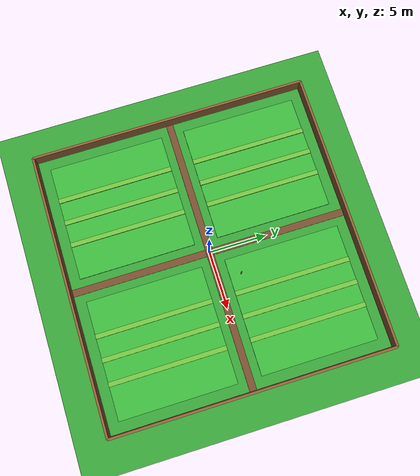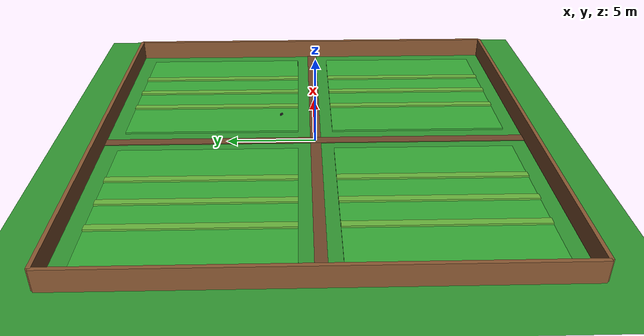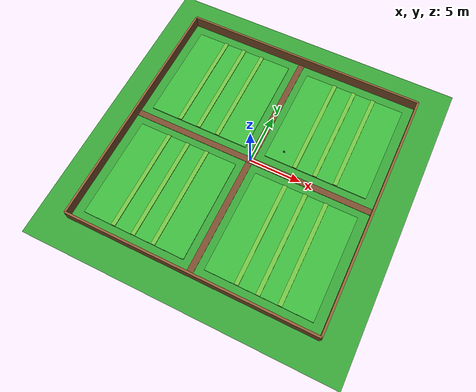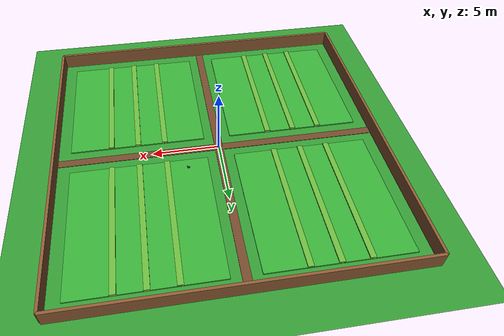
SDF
<?xml version="1.0"?>
<sdf version="1.7">
  <world name="bird_deterrent_field">
    <!-- Basic simulation settings for a stable outdoor field. -->
    <physics type="ode">
      <max_step_size>0.001</max_step_size>
      <real_time_factor>1.0</real_time_factor>
      <real_time_update_rate>1000.0</real_time_update_rate>
    </physics>

    <gravity>0 0 -9.81</gravity>

    <!-- Sunlight for the scene. -->
    <include>
      <uri>model://sun</uri>
    </include>

    <!-- Ground plane with a light green field appearance. -->
    <model name="field_ground">
      <static>true</static>
      <link name="ground_link">
        <pose>0 0 0 0 0 0</pose>
        <collision name="ground_collision">
          <geometry>
            <plane>
              <normal>0 0 1</normal>
              <size>60 60</size>
            </plane>
          </geometry>
        </collision>

        <visual name="ground_visual">
          <geometry>
            <plane>
              <normal>0 0 1</normal>
              <size>60 60</size>
            </plane>
          </geometry>
          <material>
            <ambient>0.15 0.45 0.15 1.0</ambient>
            <diffuse>0.20 0.60 0.20 1.0</diffuse>
            <specular>0.05 0.05 0.05 1.0</specular>
          </material>
        </visual>
      </link>
    </model>

    <!-- Four crop quadrants separated by a central dirt path cross. -->
    <model name="crop_quadrant_nw">
      <static>true</static>
      <link name="link">
        <pose>-6.0 6.0 0.05 0 0 0</pose>
        <collision name="collision">
          <geometry>
            <box>
              <size>10.0 10.0 0.10</size>
            </box>
          </geometry>
        </collision>
        <visual name="visual">
          <geometry>
            <box>
              <size>10.0 10.0 0.10</size>
            </box>
          </geometry>
          <material>
            <ambient>0.16 0.50 0.16 1.0</ambient>
            <diffuse>0.22 0.68 0.22 1.0</diffuse>
          </material>
        </visual>
      </link>
    </model>

    <model name="crop_rows_nw">
      <static>true</static>
      <link name="link">
        <pose>-6.0 6.0 0.10 0 0 0</pose>
        <visual name="row_1">
          <pose>-2.0 0 0 0 0 0</pose>
          <geometry><box><size>0.40 10.0 0.20</size></box></geometry>
          <material><ambient>0.32 0.58 0.18 1.0</ambient><diffuse>0.42 0.72 0.24 1.0</diffuse></material>
        </visual>
        <visual name="row_2">
          <pose>0.0 0 0 0 0 0</pose>
          <geometry><box><size>0.40 10.0 0.20</size></box></geometry>
          <material><ambient>0.32 0.58 0.18 1.0</ambient><diffuse>0.42 0.72 0.24 1.0</diffuse></material>
        </visual>
        <visual name="row_3">
          <pose>2.0 0 0 0 0 0</pose>
          <geometry><box><size>0.40 10.0 0.20</size></box></geometry>
          <material><ambient>0.32 0.58 0.18 1.0</ambient><diffuse>0.42 0.72 0.24 1.0</diffuse></material>
        </visual>
      </link>
    </model>

    <model name="crop_quadrant_ne">
      <static>true</static>
      <link name="link">
        <pose>6.0 6.0 0.05 0 0 0</pose>
        <collision name="collision">
          <geometry><box><size>10.0 10.0 0.10</size></box></geometry>
        </collision>
        <visual name="visual">
          <geometry><box><size>10.0 10.0 0.10</size></box></geometry>
          <material><ambient>0.16 0.50 0.16 1.0</ambient><diffuse>0.22 0.68 0.22 1.0</diffuse></material>
        </visual>
      </link>
    </model>

    <model name="crop_rows_ne">
      <static>true</static>
      <link name="link">
        <pose>6.0 6.0 0.10 0 0 0</pose>
        <visual name="row_1">
          <pose>-2.0 0 0 0 0 0</pose>
          <geometry><box><size>0.40 10.0 0.20</size></box></geometry>
          <material><ambient>0.32 0.58 0.18 1.0</ambient><diffuse>0.42 0.72 0.24 1.0</diffuse></material>
        </visual>
        <visual name="row_2">
          <pose>0.0 0 0 0 0 0</pose>
          <geometry><box><size>0.40 10.0 0.20</size></box></geometry>
          <material><ambient>0.32 0.58 0.18 1.0</ambient><diffuse>0.42 0.72 0.24 1.0</diffuse></material>
        </visual>
        <visual name="row_3">
          <pose>2.0 0 0 0 0 0</pose>
          <geometry><box><size>0.40 10.0 0.20</size></box></geometry>
          <material><ambient>0.32 0.58 0.18 1.0</ambient><diffuse>0.42 0.72 0.24 1.0</diffuse></material>
        </visual>
      </link>
    </model>

    <model name="crop_quadrant_sw">
      <static>true</static>
      <link name="link">
        <pose>-6.0 -6.0 0.05 0 0 0</pose>
        <collision name="collision">
          <geometry><box><size>10.0 10.0 0.10</size></box></geometry>
        </collision>
        <visual name="visual">
          <geometry><box><size>10.0 10.0 0.10</size></box></geometry>
          <material><ambient>0.16 0.50 0.16 1.0</ambient><diffuse>0.22 0.68 0.22 1.0</diffuse></material>
        </visual>
      </link>
    </model>

    <model name="crop_rows_sw">
      <static>true</static>
      <link name="link">
        <pose>-6.0 -6.0 0.10 0 0 0</pose>
        <visual name="row_1">
          <pose>-2.0 0 0 0 0 0</pose>
          <geometry><box><size>0.40 10.0 0.20</size></box></geometry>
          <material><ambient>0.32 0.58 0.18 1.0</ambient><diffuse>0.42 0.72 0.24 1.0</diffuse></material>
        </visual>
        <visual name="row_2">
          <pose>0.0 0 0 0 0 0</pose>
          <geometry><box><size>0.40 10.0 0.20</size></box></geometry>
          <material><ambient>0.32 0.58 0.18 1.0</ambient><diffuse>0.42 0.72 0.24 1.0</diffuse></material>
        </visual>
        <visual name="row_3">
          <pose>2.0 0 0 0 0 0</pose>
          <geometry><box><size>0.40 10.0 0.20</size></box></geometry>
          <material><ambient>0.32 0.58 0.18 1.0</ambient><diffuse>0.42 0.72 0.24 1.0</diffuse></material>
        </visual>
      </link>
    </model>

    <model name="crop_quadrant_se">
      <static>true</static>
      <link name="link">
        <pose>6.0 -6.0 0.05 0 0 0</pose>
        <collision name="collision">
          <geometry><box><size>10.0 10.0 0.10</size></box></geometry>
        </collision>
        <visual name="visual">
          <geometry><box><size>10.0 10.0 0.10</size></box></geometry>
          <material><ambient>0.16 0.50 0.16 1.0</ambient><diffuse>0.22 0.68 0.22 1.0</diffuse></material>
        </visual>
      </link>
    </model>

    <model name="crop_rows_se">
      <static>true</static>
      <link name="link">
        <pose>6.0 -6.0 0.10 0 0 0</pose>
        <visual name="row_1">
          <pose>-2.0 0 0 0 0 0</pose>
          <geometry><box><size>0.40 10.0 0.20</size></box></geometry>
          <material><ambient>0.32 0.58 0.18 1.0</ambient><diffuse>0.42 0.72 0.24 1.0</diffuse></material>
        </visual>
        <visual name="row_2">
          <pose>0.0 0 0 0 0 0</pose>
          <geometry><box><size>0.40 10.0 0.20</size></box></geometry>
          <material><ambient>0.32 0.58 0.18 1.0</ambient><diffuse>0.42 0.72 0.24 1.0</diffuse></material>
        </visual>
        <visual name="row_3">
          <pose>2.0 0 0 0 0 0</pose>
          <geometry><box><size>0.40 10.0 0.20</size></box></geometry>
          <material><ambient>0.32 0.58 0.18 1.0</ambient><diffuse>0.42 0.72 0.24 1.0</diffuse></material>
        </visual>
      </link>
    </model>

    <model name="dirt_path_horizontal">
      <static>true</static>
      <link name="link">
        <pose>0.0 0.0 0.02 0 0 0</pose>
        <collision name="collision">
          <geometry><box><size>24.0 0.60 0.04</size></box></geometry>
        </collision>
        <visual name="visual">
          <geometry><box><size>24.0 0.60 0.04</size></box></geometry>
          <material><ambient>0.35 0.22 0.13 1.0</ambient><diffuse>0.45 0.28 0.17 1.0</diffuse></material>
        </visual>
      </link>
    </model>

    <model name="dirt_path_vertical">
      <static>true</static>
      <link name="link">
        <pose>0.0 0.0 0.02 0 0 0</pose>
        <collision name="collision">
          <geometry><box><size>0.60 24.0 0.04</size></box></geometry>
        </collision>
        <visual name="visual">
          <geometry><box><size>0.60 24.0 0.04</size></box></geometry>
          <material><ambient>0.35 0.22 0.13 1.0</ambient><diffuse>0.45 0.28 0.17 1.0</diffuse></material>
        </visual>
      </link>
    </model>

    <model name="fence_north_south">
      <static>true</static>
      <link name="link">
        <pose>0.0 12.0 0.60 0 0 0</pose>
        <collision name="collision">
          <geometry><box><size>24.0 0.20 1.20</size></box></geometry>
        </collision>
        <visual name="visual">
          <geometry><box><size>24.0 0.20 1.20</size></box></geometry>
          <material><ambient>0.45 0.30 0.15 1.0</ambient><diffuse>0.55 0.35 0.20 1.0</diffuse></material>
        </visual>
      </link>
    </model>

    <model name="fence_south">
      <static>true</static>
      <link name="link">
        <pose>0.0 -12.0 0.60 0 0 0</pose>
        <collision name="collision">
          <geometry><box><size>24.0 0.20 1.20</size></box></geometry>
        </collision>
        <visual name="visual">
          <geometry><box><size>24.0 0.20 1.20</size></box></geometry>
          <material><ambient>0.45 0.30 0.15 1.0</ambient><diffuse>0.55 0.35 0.20 1.0</diffuse></material>
        </visual>
      </link>
    </model>

    <model name="fence_east">
      <static>true</static>
      <link name="link">
        <pose>12.0 0.0 0.60 0 0 0</pose>
        <collision name="collision">
          <geometry><box><size>0.20 24.0 1.20</size></box></geometry>
        </collision>
        <visual name="visual">
          <geometry><box><size>0.20 24.0 1.20</size></box></geometry>
          <material><ambient>0.45 0.30 0.15 1.0</ambient><diffuse>0.55 0.35 0.20 1.0</diffuse></material>
        </visual>
      </link>
    </model>

    <model name="fence_west">
      <static>true</static>
      <link name="link">
        <pose>-12.0 0.0 0.60 0 0 0</pose>
        <collision name="collision">
          <geometry><box><size>0.20 24.0 1.20</size></box></geometry>
        </collision>
        <visual name="visual">
          <geometry><box><size>0.20 24.0 1.20</size></box></geometry>
          <material><ambient>0.45 0.30 0.15 1.0</ambient><diffuse>0.55 0.35 0.20 1.0</diffuse></material>
        </visual>
      </link>
    </model>

    <include>
      <uri>model://bird_model</uri>
      <pose>2.5 2.0 0.25 0 0 -0.6</pose>
    </include>
  </world>
  <model name="field_camera">
    <static>true</static>
    <pose>0 0 4 0 0 0</pose>
    <link name="camera_link">
      <sensor name="field_camera_sensor" type="camera">
        <always_on>true</always_on>
        <update_rate>20.0</update_rate>
        <camera name="field_camera_view">
          <horizontal_fov>1.047</horizontal_fov>
          <image>
            <width>640</width>
            <height>480</height>
            <format>R8G8B8</format>
          </image>
          <clip>
            <near>0.1</near>
            <far>100</far>
          </clip>
        </camera>
        <plugin name="gazebo_ros_camera" filename="libgazebo_ros_camera.so">
          <ros>
            <namespace>/</namespace>
          </ros>
          <camera_name>camera</camera_name>
          <frame_name>camera_link</frame_name>
          <hack_baseline>0.0</hack_baseline>
        </plugin>
      </sensor>
    </link>
  </model>
</sdf>

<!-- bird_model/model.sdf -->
<sdf version="1.7">
  <model name="bird_model">
    <static>false</static>

    <plugin name="bird_motion_plugin" filename="libgazebo_ros_planar_move.so">
      <ros>
        <namespace>/</namespace>
        <remapping>cmd_vel:=/bird_model/cmd_vel</remapping>
        <remapping>odom:=/bird_model/odom</remapping>
      </ros>
      <update_rate>100</update_rate>
      <publish_rate>10</publish_rate>
      <publish_odom>true</publish_odom>
      <publish_odom_tf>true</publish_odom_tf>
      <odometry_frame>odom</odometry_frame>
      <robot_base_frame>body</robot_base_frame>
      <covariance_x>0.0001</covariance_x>
      <covariance_y>0.0001</covariance_y>
      <covariance_yaw>0.01</covariance_yaw>
    </plugin>

    <link name="body">
      <pose>0 0 0.12 0 0 0</pose>
      <inertial>
        <mass>0.25</mass>
        <inertia>
          <ixx>0.001</ixx>
          <iyy>0.001</iyy>
          <izz>0.001</izz>
          <ixy>0.0</ixy>
          <ixz>0.0</ixz>
          <iyz>0.0</iyz>
        </inertia>
      </inertial>

      <collision name="body_collision">
        <geometry>
          <box>
            <size>0.16 0.08 0.08</size>
          </box>
        </geometry>
      </collision>

      <visual name="body_visual">
        <geometry>
          <box>
            <size>0.16 0.08 0.08</size>
          </box>
        </geometry>
        <material>
          <ambient>0.15 0.15 0.15 1.0</ambient>
          <diffuse>0.25 0.25 0.25 1.0</diffuse>
          <specular>0.2 0.2 0.2 1.0</specular>
        </material>
      </visual>
    </link>

    <link name="left_wing">
      <pose>0.01 0.06 0.12 0 0 0.35</pose>
      <inertial>
        <mass>0.03</mass>
        <inertia>
          <ixx>0.00005</ixx>
          <iyy>0.00005</iyy>
          <izz>0.00002</izz>
          <ixy>0.0</ixy>
          <ixz>0.0</ixz>
          <iyz>0.0</iyz>
        </inertia>
      </inertial>
      <visual name="left_wing_visual">
        <geometry>
          <box>
            <size>0.10 0.02 0.06</size>
          </box>
        </geometry>
        <material>
          <ambient>0.22 0.22 0.22 1.0</ambient>
          <diffuse>0.35 0.35 0.35 1.0</diffuse>
          <specular>0.15 0.15 0.15 1.0</specular>
        </material>
      </visual>
    </link>

    <link name="right_wing">
      <pose>0.01 -0.06 0.12 0 0 -0.35</pose>
      <inertial>
        <mass>0.03</mass>
        <inertia>
          <ixx>0.00005</ixx>
          <iyy>0.00005</iyy>
          <izz>0.00002</izz>
          <ixy>0.0</ixy>
          <ixz>0.0</ixz>
          <iyz>0.0</iyz>
        </inertia>
      </inertial>
      <visual name="right_wing_visual">
        <geometry>
          <box>
            <size>0.10 0.02 0.06</size>
          </box>
        </geometry>
        <material>
          <ambient>0.22 0.22 0.22 1.0</ambient>
          <diffuse>0.35 0.35 0.35 1.0</diffuse>
          <specular>0.15 0.15 0.15 1.0</specular>
        </material>
      </visual>
    </link>

    <link name="head">
      <pose>0.09 0 0.16 0 0 0</pose>
      <inertial>
        <mass>0.08</mass>
        <inertia>
          <ixx>0.0002</ixx>
          <iyy>0.0002</iyy>
          <izz>0.0002</izz>
          <ixy>0.0</ixy>
          <ixz>0.0</ixz>
          <iyz>0.0</iyz>
        </inertia>
      </inertial>

      <collision name="head_collision">
        <geometry>
          <sphere>
            <radius>0.04</radius>
          </sphere>
        </geometry>
      </collision>

      <visual name="head_visual">
        <geometry>
          <sphere>
            <radius>0.04</radius>
          </sphere>
        </geometry>
        <material>
          <ambient>0.18 0.18 0.18 1.0</ambient>
          <diffuse>0.3 0.3 0.3 1.0</diffuse>
          <specular>0.2 0.2 0.2 1.0</specular>
        </material>
      </visual>
    </link>

    <link name="tail">
      <pose>-0.10 0 0.12 0 0 0</pose>
      <inertial>
        <mass>0.04</mass>
        <inertia>
          <ixx>0.0001</ixx>
          <iyy>0.0001</iyy>
          <izz>0.0001</izz>
          <ixy>0.0</ixy>
          <ixz>0.0</ixz>
          <iyz>0.0</iyz>
        </inertia>
      </inertial>

      <collision name="tail_collision">
        <geometry>
          <box>
            <size>0.06 0.02 0.02</size>
          </box>
        </geometry>
      </collision>

      <visual name="tail_visual">
        <geometry>
          <box>
            <size>0.06 0.02 0.02</size>
          </box>
        </geometry>
        <material>
          <ambient>0.12 0.12 0.12 1.0</ambient>
          <diffuse>0.2 0.2 0.2 1.0</diffuse>
          <specular>0.1 0.1 0.1 1.0</specular>
        </material>
      </visual>
    </link>

    <joint name="body_to_left_wing_joint" type="fixed">
      <parent>body</parent>
      <child>left_wing</child>
      <pose>0 0 0 0 0 0</pose>
    </joint>

    <joint name="body_to_right_wing_joint" type="fixed">
      <parent>body</parent>
      <child>right_wing</child>
      <pose>0 0 0 0 0 0</pose>
    </joint>

    <joint name="body_to_head_joint" type="fixed">
      <parent>body</parent>
      <child>head</child>
      <pose>0 0 0 0 0 0</pose>
    </joint>

    <joint name="body_to_tail_joint" type="fixed">
      <parent>body</parent>
      <child>tail</child>
      <pose>0 0 0 0 0 0</pose>
    </joint>
  </model>
</sdf>
